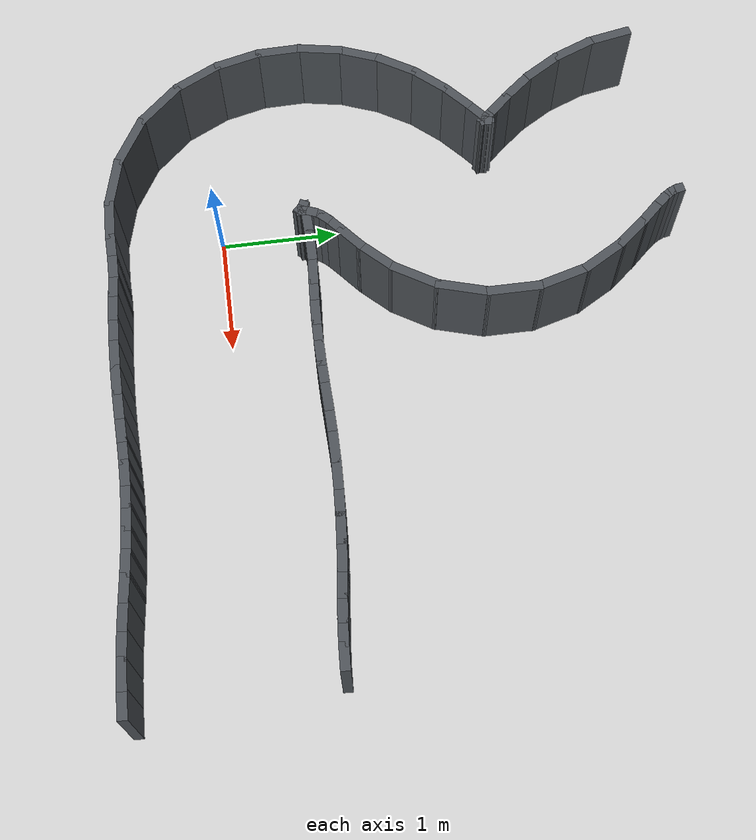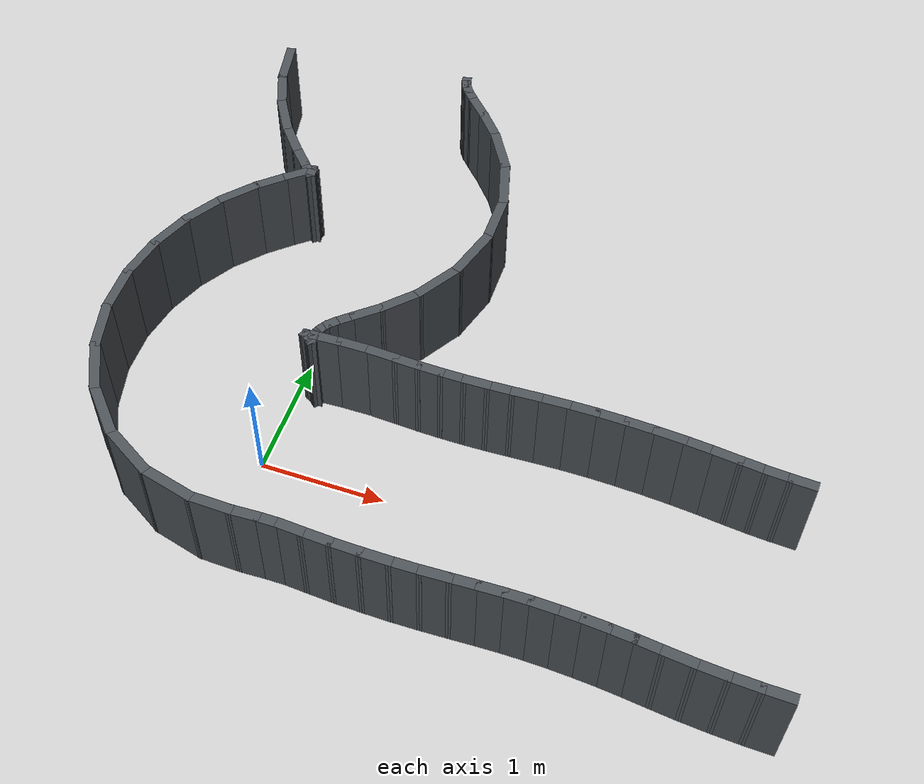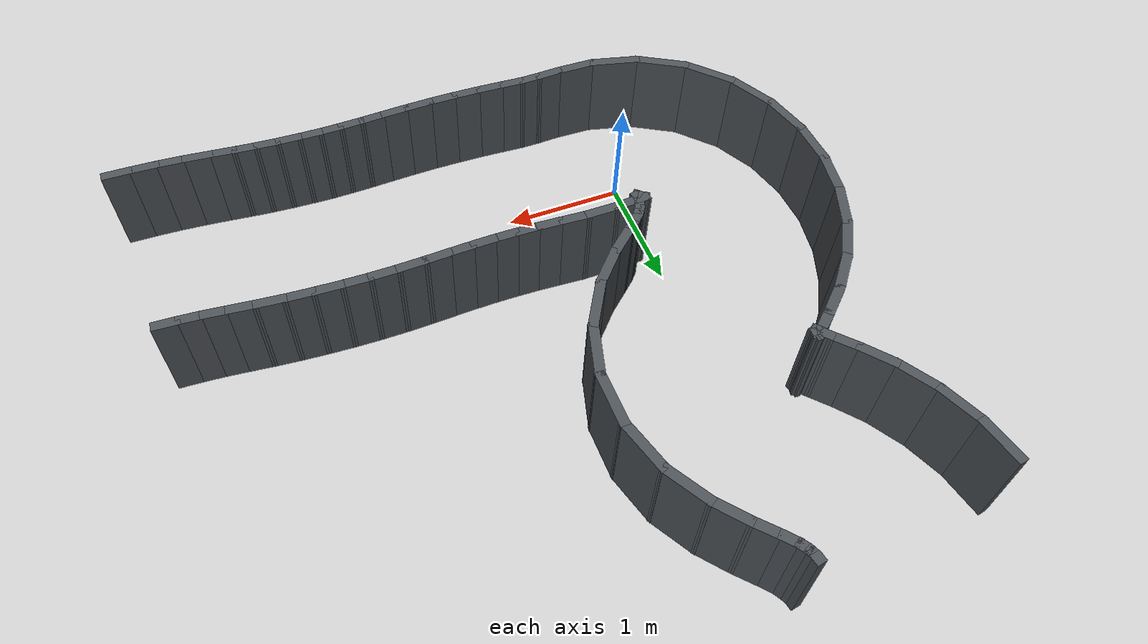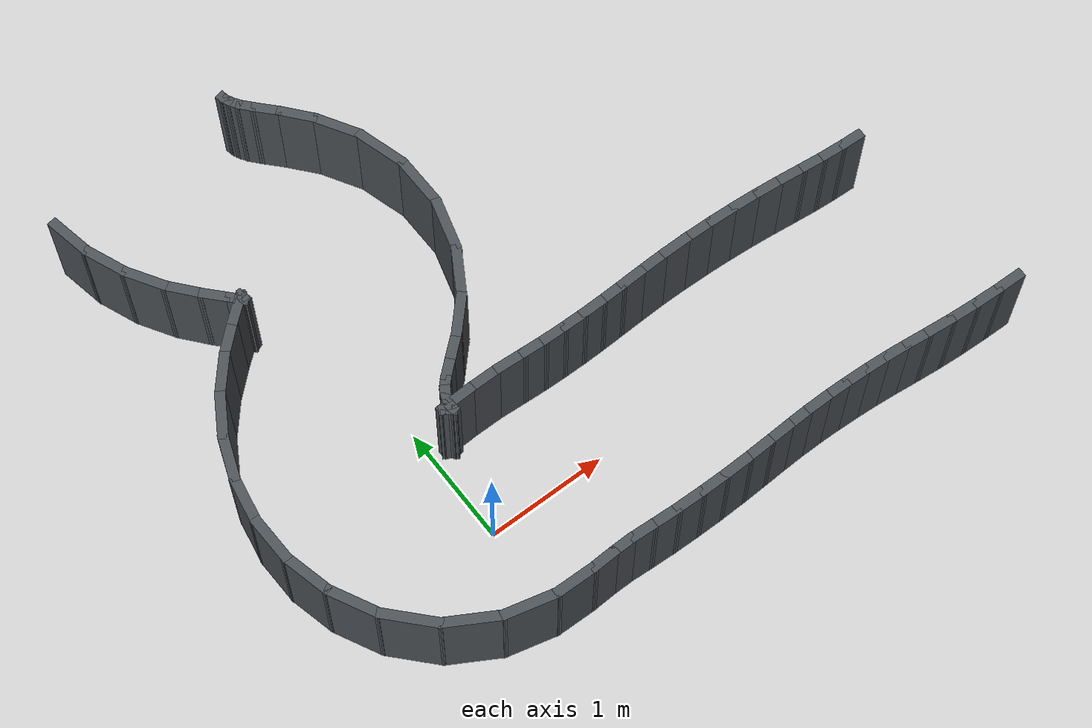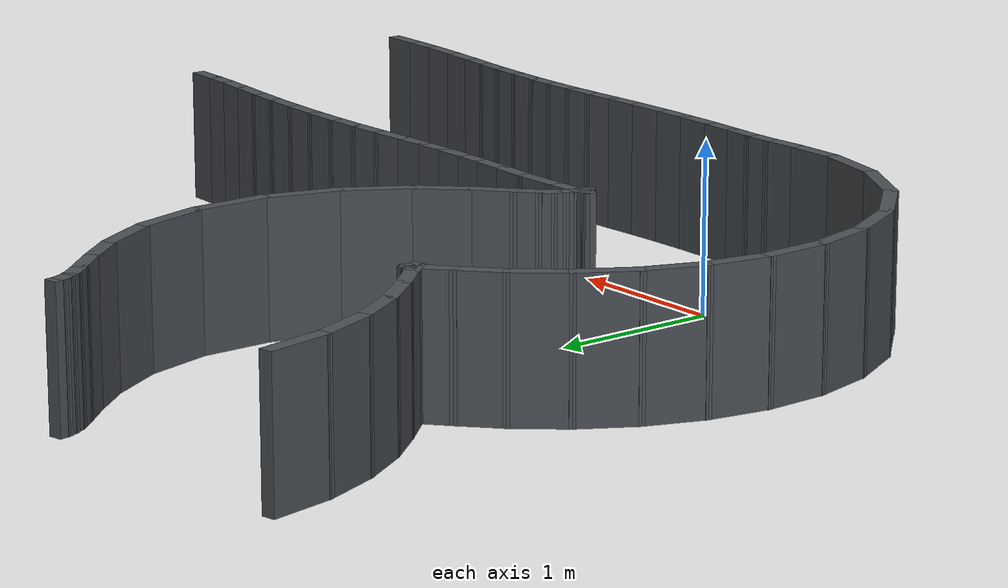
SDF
<sdf version="1.10">
 <world name="kookmin_xycar_track">
  <model name="slam_map">
   <static>true</static>
   <link name="route_wall_0068">
    <pose>0.351519 3.890742 0.400000 0 0 -1.384163306</pose>
    <collision name="collision">
     <geometry><box><size>0.082639 0.080000 0.800000</size></box></geometry>
    </collision>
    <visual name="visual">
     <geometry><box><size>0.082639 0.080000 0.800000</size></box></geometry>
     <material>
      <ambient>0.3000 0.3200 0.3400 1.0000</ambient>
      <diffuse>0.3000 0.3200 0.3400 1.0000</diffuse>
     </material>
    </visual>
   </link>
   <link name="route_wall_0069">
    <pose>0.365880 3.845267 0.400000 0 0 -1.169572810</pose>
    <collision name="collision">
     <geometry><box><size>0.093284 0.080000 0.800000</size></box></geometry>
    </collision>
    <visual name="visual">
     <geometry><box><size>0.093284 0.080000 0.800000</size></box></geometry>
     <material>
      <ambient>0.3000 0.3200 0.3400 1.0000</ambient>
      <diffuse>0.3000 0.3200 0.3400 1.0000</diffuse>
     </material>
    </visual>
   </link>
   <link name="route_wall_0070">
    <pose>0.394767 3.790840 0.400000 0 0 -1.017163962</pose>
    <collision name="collision">
     <geometry><box><size>0.110302 0.080000 0.800000</size></box></geometry>
    </collision>
    <visual name="visual">
     <geometry><box><size>0.110302 0.080000 0.800000</size></box></geometry>
     <material>
      <ambient>0.3000 0.3200 0.3400 1.0000</ambient>
      <diffuse>0.3000 0.3200 0.3400 1.0000</diffuse>
     </material>
    </visual>
   </link>
   <link name="route_wall_0071">
    <pose>0.452056 3.716382 0.400000 0 0 -0.854267817</pose>
    <collision name="collision">
     <geometry><box><size>0.158177 0.080000 0.800000</size></box></geometry>
    </collision>
    <visual name="visual">
     <geometry><box><size>0.158177 0.080000 0.800000</size></box></geometry>
     <material>
      <ambient>0.3000 0.3200 0.3400 1.0000</ambient>
      <diffuse>0.3000 0.3200 0.3400 1.0000</diffuse>
     </material>
    </visual>
   </link>
   <link name="route_wall_0072">
    <pose>0.558555 3.598743 0.400000 0 0 -0.823668303</pose>
    <collision name="collision">
     <geometry><box><size>0.239228 0.080000 0.800000</size></box></geometry>
    </collision>
    <visual name="visual">
     <geometry><box><size>0.239228 0.080000 0.800000</size></box></geometry>
     <material>
      <ambient>0.3000 0.3200 0.3400 1.0000</ambient>
      <diffuse>0.3000 0.3200 0.3400 1.0000</diffuse>
     </material>
    </visual>
   </link>
   <link name="route_wall_0073">
    <pose>0.716644 3.416493 0.400000 0 0 -0.879181869</pose>
    <collision name="collision">
     <geometry><box><size>0.323475 0.080000 0.800000</size></box></geometry>
    </collision>
    <visual name="visual">
     <geometry><box><size>0.323475 0.080000 0.800000</size></box></geometry>
     <material>
      <ambient>0.3000 0.3200 0.3400 1.0000</ambient>
      <diffuse>0.3000 0.3200 0.3400 1.0000</diffuse>
     </material>
    </visual>
   </link>
   <link name="route_wall_0074">
    <pose>0.901000 3.146419 0.400000 0 0 -1.042271819</pose>
    <collision name="collision">
     <geometry><box><size>0.412660 0.080000 0.800000</size></box></geometry>
    </collision>
    <visual name="visual">
     <geometry><box><size>0.412660 0.080000 0.800000</size></box></geometry>
     <material>
      <ambient>0.3000 0.3200 0.3400 1.0000</ambient>
      <diffuse>0.3000 0.3200 0.3400 1.0000</diffuse>
     </material>
    </visual>
   </link>
   <link name="route_wall_0075">
    <pose>1.051302 2.784785 0.400000 0 0 -1.297140389</pose>
    <collision name="collision">
     <geometry><box><size>0.456972 0.080000 0.800000</size></box></geometry>
    </collision>
    <visual name="visual">
     <geometry><box><size>0.456972 0.080000 0.800000</size></box></geometry>
     <material>
      <ambient>0.3000 0.3200 0.3400 1.0000</ambient>
      <diffuse>0.3000 0.3200 0.3400 1.0000</diffuse>
     </material>
    </visual>
   </link>
   <link name="route_wall_0076">
    <pose>1.108245 2.371218 0.400000 0 0 -1.567984853</pose>
    <collision name="collision">
     <geometry><box><size>0.465679 0.080000 0.800000</size></box></geometry>
    </collision>
    <visual name="visual">
     <geometry><box><size>0.465679 0.080000 0.800000</size></box></geometry>
     <material>
      <ambient>0.3000 0.3200 0.3400 1.0000</ambient>
      <diffuse>0.3000 0.3200 0.3400 1.0000</diffuse>
     </material>
    </visual>
   </link>
   <link name="route_wall_0077">
    <pose>1.050243 1.954726 0.400000 0 0 -1.850973391</pose>
    <collision name="collision">
     <geometry><box><size>0.463832 0.080000 0.800000</size></box></geometry>
    </collision>
    <visual name="visual">
     <geometry><box><size>0.463832 0.080000 0.800000</size></box></geometry>
     <material>
      <ambient>0.3000 0.3200 0.3400 1.0000</ambient>
      <diffuse>0.3000 0.3200 0.3400 1.0000</diffuse>
     </material>
    </visual>
   </link>
   <link name="route_wall_0078">
    <pose>0.889145 1.580914 0.400000 0 0 -2.112951959</pose>
    <collision name="collision">
     <geometry><box><size>0.437292 0.080000 0.800000</size></box></geometry>
    </collision>
    <visual name="visual">
     <geometry><box><size>0.437292 0.080000 0.800000</size></box></geometry>
     <material>
      <ambient>0.3000 0.3200 0.3400 1.0000</ambient>
      <diffuse>0.3000 0.3200 0.3400 1.0000</diffuse>
     </material>
    </visual>
   </link>
   <link name="route_wall_0079">
    <pose>0.673524 1.291206 0.400000 0 0 -2.328585380</pose>
    <collision name="collision">
     <geometry><box><size>0.369170 0.080000 0.800000</size></box></geometry>
    </collision>
    <visual name="visual">
     <geometry><box><size>0.369170 0.080000 0.800000</size></box></geometry>
     <material>
      <ambient>0.3000 0.3200 0.3400 1.0000</ambient>
      <diffuse>0.3000 0.3200 0.3400 1.0000</diffuse>
     </material>
    </visual>
   </link>
   <link name="route_wall_0080">
    <pose>0.474333 1.097878 0.400000 0 0 -2.432916965</pose>
    <collision name="collision">
     <geometry><box><size>0.266729 0.080000 0.800000</size></box></geometry>
    </collision>
    <visual name="visual">
     <geometry><box><size>0.266729 0.080000 0.800000</size></box></geometry>
     <material>
      <ambient>0.3000 0.3200 0.3400 1.0000</ambient>
      <diffuse>0.3000 0.3200 0.3400 1.0000</diffuse>
     </material>
    </visual>
   </link>
   <link name="route_wall_0081">
    <pose>0.336733 0.978597 0.400000 0 0 -2.418269901</pose>
    <collision name="collision">
     <geometry><box><size>0.177488 0.080000 0.800000</size></box></geometry>
    </collision>
    <visual name="visual">
     <geometry><box><size>0.177488 0.080000 0.800000</size></box></geometry>
     <material>
      <ambient>0.3000 0.3200 0.3400 1.0000</ambient>
      <diffuse>0.3000 0.3200 0.3400 1.0000</diffuse>
     </material>
    </visual>
   </link>
   <link name="route_wall_0082">
    <pose>0.259336 0.904452 0.400000 0 0 -2.305255522</pose>
    <collision name="collision">
     <geometry><box><size>0.117190 0.080000 0.800000</size></box></geometry>
    </collision>
    <visual name="visual">
     <geometry><box><size>0.117190 0.080000 0.800000</size></box></geometry>
     <material>
      <ambient>0.3000 0.3200 0.3400 1.0000</ambient>
      <diffuse>0.3000 0.3200 0.3400 1.0000</diffuse>
     </material>
    </visual>
   </link>
   <link name="route_wall_0083">
    <pose>0.218987 0.851345 0.400000 0 0 -2.105349764</pose>
    <collision name="collision">
     <geometry><box><size>0.096856 0.080000 0.800000</size></box></geometry>
    </collision>
    <visual name="visual">
     <geometry><box><size>0.096856 0.080000 0.800000</size></box></geometry>
     <material>
      <ambient>0.3000 0.3200 0.3400 1.0000</ambient>
      <diffuse>0.3000 0.3200 0.3400 1.0000</diffuse>
     </material>
    </visual>
   </link>
   <link name="route_wall_0084">
    <pose>0.194809 0.802022 0.400000 0 0 -1.942666619</pose>
    <collision name="collision">
     <geometry><box><size>0.093369 0.080000 0.800000</size></box></geometry>
    </collision>
    <visual name="visual">
     <geometry><box><size>0.093369 0.080000 0.800000</size></box></geometry>
     <material>
      <ambient>0.3000 0.3200 0.3400 1.0000</ambient>
      <diffuse>0.3000 0.3200 0.3400 1.0000</diffuse>
     </material>
    </visual>
   </link>
   <link name="route_wall_0085">
    <pose>0.181132 0.757166 0.400000 0 0 -1.767325091</pose>
    <collision name="collision">
     <geometry><box><size>0.080775 0.080000 0.800000</size></box></geometry>
    </collision>
    <visual name="visual">
     <geometry><box><size>0.080775 0.080000 0.800000</size></box></geometry>
     <material>
      <ambient>0.3000 0.3200 0.3400 1.0000</ambient>
      <diffuse>0.3000 0.3200 0.3400 1.0000</diffuse>
     </material>
    </visual>
   </link>
   <link name="route_wall_0086">
    <pose>0.177388 0.722075 0.400000 0 0 -1.555043667</pose>
    <collision name="collision">
     <geometry><box><size>0.070195 0.080000 0.800000</size></box></geometry>
    </collision>
    <visual name="visual">
     <geometry><box><size>0.070195 0.080000 0.800000</size></box></geometry>
     <material>
      <ambient>0.3000 0.3200 0.3400 1.0000</ambient>
      <diffuse>0.3000 0.3200 0.3400 1.0000</diffuse>
     </material>
    </visual>
   </link>
   <link name="route_wall_0087">
    <pose>0.179727 0.696767 0.400000 0 0 -1.367932783</pose>
    <collision name="collision">
     <geometry><box><size>0.060853 0.080000 0.800000</size></box></geometry>
    </collision>
    <visual name="visual">
     <geometry><box><size>0.060853 0.080000 0.800000</size></box></geometry>
     <material>
      <ambient>0.3000 0.3200 0.3400 1.0000</ambient>
      <diffuse>0.3000 0.3200 0.3400 1.0000</diffuse>
     </material>
    </visual>
   </link>
   <link name="route_wall_0088">
    <pose>0.179326 0.688697 0.400000 0 0 2.433419039</pose>
    <collision name="collision">
     <geometry><box><size>0.046587 0.080000 0.800000</size></box></geometry>
    </collision>
    <visual name="visual">
     <geometry><box><size>0.046587 0.080000 0.800000</size></box></geometry>
     <material>
      <ambient>0.3000 0.3200 0.3400 1.0000</ambient>
      <diffuse>0.3000 0.3200 0.3400 1.0000</diffuse>
     </material>
    </visual>
   </link>
   <link name="route_wall_0089">
    <pose>0.162951 0.704650 0.400000 0 0 2.358446135</pose>
    <collision name="collision">
     <geometry><box><size>0.079151 0.080000 0.800000</size></box></geometry>
    </collision>
    <visual name="visual">
     <geometry><box><size>0.079151 0.080000 0.800000</size></box></geometry>
     <material>
      <ambient>0.3000 0.3200 0.3400 1.0000</ambient>
      <diffuse>0.3000 0.3200 0.3400 1.0000</diffuse>
     </material>
    </visual>
   </link>
   <link name="route_wall_0090">
    <pose>0.130745 0.729712 0.400000 0 0 2.591128678</pose>
    <collision name="collision">
     <geometry><box><size>0.083020 0.080000 0.800000</size></box></geometry>
    </collision>
    <visual name="visual">
     <geometry><box><size>0.083020 0.080000 0.800000</size></box></geometry>
     <material>
      <ambient>0.3000 0.3200 0.3400 1.0000</ambient>
      <diffuse>0.3000 0.3200 0.3400 1.0000</diffuse>
     </material>
    </visual>
   </link>
   <link name="route_wall_0091">
    <pose>0.107009 0.743764 0.400000 0 0 2.663507471</pose>
    <collision name="collision">
     <geometry><box><size>0.052172 0.080000 0.800000</size></box></geometry>
    </collision>
    <visual name="visual">
     <geometry><box><size>0.052172 0.080000 0.800000</size></box></geometry>
     <material>
      <ambient>0.3000 0.3200 0.3400 1.0000</ambient>
      <diffuse>0.3000 0.3200 0.3400 1.0000</diffuse>
     </material>
    </visual>
   </link>
   <link name="route_wall_0092">
    <pose>0.144861 0.749027 0.400000 0 0 0.056891563</pose>
    <collision name="collision">
     <geometry><box><size>0.126650 0.080000 0.800000</size></box></geometry>
    </collision>
    <visual name="visual">
     <geometry><box><size>0.126650 0.080000 0.800000</size></box></geometry>
     <material>
      <ambient>0.3000 0.3200 0.3400 1.0000</ambient>
      <diffuse>0.3000 0.3200 0.3400 1.0000</diffuse>
     </material>
    </visual>
   </link>
   <link name="route_wall_0093">
    <pose>0.285789 0.755765 0.400000 0 0 0.043729290</pose>
    <collision name="collision">
     <geometry><box><size>0.235534 0.080000 0.800000</size></box></geometry>
    </collision>
    <visual name="visual">
     <geometry><box><size>0.235534 0.080000 0.800000</size></box></geometry>
     <material>
      <ambient>0.3000 0.3200 0.3400 1.0000</ambient>
      <diffuse>0.3000 0.3200 0.3400 1.0000</diffuse>
     </material>
    </visual>
   </link>
   <link name="route_wall_0094">
    <pose>0.503517 0.760731 0.400000 0 0 0.005771295</pose>
    <collision name="collision">
     <geometry><box><size>0.280112 0.080000 0.800000</size></box></geometry>
    </collision>
    <visual name="visual">
     <geometry><box><size>0.280112 0.080000 0.800000</size></box></geometry>
     <material>
      <ambient>0.3000 0.3200 0.3400 1.0000</ambient>
      <diffuse>0.3000 0.3200 0.3400 1.0000</diffuse>
     </material>
    </visual>
   </link>
   <link name="route_wall_0095">
    <pose>0.735142 0.755371 0.400000 0 0 -0.054200212</pose>
    <collision name="collision">
     <geometry><box><size>0.263471 0.080000 0.800000</size></box></geometry>
    </collision>
    <visual name="visual">
     <geometry><box><size>0.263471 0.080000 0.800000</size></box></geometry>
     <material>
      <ambient>0.3000 0.3200 0.3400 1.0000</ambient>
      <diffuse>0.3000 0.3200 0.3400 1.0000</diffuse>
     </material>
    </visual>
   </link>
   <link name="route_wall_0096">
    <pose>0.939828 0.744483 0.400000 0 0 -0.051876779</pose>
    <collision name="collision">
     <geometry><box><size>0.226480 0.080000 0.800000</size></box></geometry>
    </collision>
    <visual name="visual">
     <geometry><box><size>0.226480 0.080000 0.800000</size></box></geometry>
     <material>
      <ambient>0.3000 0.3200 0.3400 1.0000</ambient>
      <diffuse>0.3000 0.3200 0.3400 1.0000</diffuse>
     </material>
    </visual>
   </link>
   <link name="route_wall_0097">
    <pose>1.123039 0.737535 0.400000 0 0 -0.023457071</pose>
    <collision name="collision">
     <geometry><box><size>0.220243 0.080000 0.800000</size></box></geometry>
    </collision>
    <visual name="visual">
     <geometry><box><size>0.220243 0.080000 0.800000</size></box></geometry>
     <material>
      <ambient>0.3000 0.3200 0.3400 1.0000</ambient>
      <diffuse>0.3000 0.3200 0.3400 1.0000</diffuse>
     </material>
    </visual>
   </link>
   <link name="route_wall_0098">
    <pose>1.303854 0.735059 0.400000 0 0 -0.003988788</pose>
    <collision name="collision">
     <geometry><box><size>0.221437 0.080000 0.800000</size></box></geometry>
    </collision>
    <visual name="visual">
     <geometry><box><size>0.221437 0.080000 0.800000</size></box></geometry>
     <material>
      <ambient>0.3000 0.3200 0.3400 1.0000</ambient>
      <diffuse>0.3000 0.3200 0.3400 1.0000</diffuse>
     </material>
    </visual>
   </link>
   <link name="route_wall_0099">
    <pose>1.485611 0.736625 0.400000 0 0 0.021173588</pose>
    <collision name="collision">
     <geometry><box><size>0.222119 0.080000 0.800000</size></box></geometry>
    </collision>
    <visual name="visual">
     <geometry><box><size>0.222119 0.080000 0.800000</size></box></geometry>
     <material>
      <ambient>0.3000 0.3200 0.3400 1.0000</ambient>
      <diffuse>0.3000 0.3200 0.3400 1.0000</diffuse>
     </material>
    </visual>
   </link>
   <link name="route_wall_0100">
    <pose>1.671480 0.742282 0.400000 0 0 0.039303703</pose>
    <collision name="collision">
     <geometry><box><size>0.229805 0.080000 0.800000</size></box></geometry>
    </collision>
    <visual name="visual">
     <geometry><box><size>0.229805 0.080000 0.800000</size></box></geometry>
     <material>
      <ambient>0.3000 0.3200 0.3400 1.0000</ambient>
      <diffuse>0.3000 0.3200 0.3400 1.0000</diffuse>
     </material>
    </visual>
   </link>
   <link name="route_wall_0101">
    <pose>1.867496 0.750580 0.400000 0 0 0.045124178</pose>
    <collision name="collision">
     <geometry><box><size>0.242582 0.080000 0.800000</size></box></geometry>
    </collision>
    <visual name="visual">
     <geometry><box><size>0.242582 0.080000 0.800000</size></box></geometry>
     <material>
      <ambient>0.3000 0.3200 0.3400 1.0000</ambient>
      <diffuse>0.3000 0.3200 0.3400 1.0000</diffuse>
     </material>
    </visual>
   </link>
   <link name="route_wall_0102">
    <pose>2.076280 0.758571 0.400000 0 0 0.031792913</pose>
    <collision name="collision">
     <geometry><box><size>0.255301 0.080000 0.800000</size></box></geometry>
    </collision>
    <visual name="visual">
     <geometry><box><size>0.255301 0.080000 0.800000</size></box></geometry>
     <material>
      <ambient>0.3000 0.3200 0.3400 1.0000</ambient>
      <diffuse>0.3000 0.3200 0.3400 1.0000</diffuse>
     </material>
    </visual>
   </link>
   <link name="route_wall_0103">
    <pose>2.294770 0.762746 0.400000 0 0 0.006785297</pose>
    <collision name="collision">
     <geometry><box><size>0.261793 0.080000 0.800000</size></box></geometry>
    </collision>
    <visual name="visual">
     <geometry><box><size>0.261793 0.080000 0.800000</size></box></geometry>
     <material>
      <ambient>0.3000 0.3200 0.3400 1.0000</ambient>
      <diffuse>0.3000 0.3200 0.3400 1.0000</diffuse>
     </material>
    </visual>
   </link>
   <link name="route_wall_0104">
    <pose>2.515709 0.761073 0.400000 0 0 -0.022035372</pose>
    <collision name="collision">
     <geometry><box><size>0.260145 0.080000 0.800000</size></box></geometry>
    </collision>
    <visual name="visual">
     <geometry><box><size>0.260145 0.080000 0.800000</size></box></geometry>
     <material>
      <ambient>0.3000 0.3200 0.3400 1.0000</ambient>
      <diffuse>0.3000 0.3200 0.3400 1.0000</diffuse>
     </material>
    </visual>
   </link>
   <link name="route_wall_0105">
    <pose>2.734139 0.753950 0.400000 0 0 -0.043316090</pose>
    <collision name="collision">
     <geometry><box><size>0.256972 0.080000 0.800000</size></box></geometry>
    </collision>
    <visual name="visual">
     <geometry><box><size>0.256972 0.080000 0.800000</size></box></geometry>
     <material>
      <ambient>0.3000 0.3200 0.3400 1.0000</ambient>
      <diffuse>0.3000 0.3200 0.3400 1.0000</diffuse>
     </material>
    </visual>
   </link>
   <link name="route_wall_0106">
    <pose>2.951722 0.742174 0.400000 0 0 -0.064725048</pose>
    <collision name="collision">
     <geometry><box><size>0.258856 0.080000 0.800000</size></box></geometry>
    </collision>
    <visual name="visual">
     <geometry><box><size>0.258856 0.080000 0.800000</size></box></geometry>
     <material>
      <ambient>0.3000 0.3200 0.3400 1.0000</ambient>
      <diffuse>0.3000 0.3200 0.3400 1.0000</diffuse>
     </material>
    </visual>
   </link>
   <link name="route_wall_0107">
    <pose>3.169050 0.725320 0.400000 0 0 -0.090170386</pose>
    <collision name="collision">
     <geometry><box><size>0.257140 0.080000 0.800000</size></box></geometry>
    </collision>
    <visual name="visual">
     <geometry><box><size>0.257140 0.080000 0.800000</size></box></geometry>
     <material>
      <ambient>0.3000 0.3200 0.3400 1.0000</ambient>
      <diffuse>0.3000 0.3200 0.3400 1.0000</diffuse>
     </material>
    </visual>
   </link>
   <link name="route_wall_0108">
    <pose>3.378248 0.704652 0.400000 0 0 -0.107344202</pose>
    <collision name="collision">
     <geometry><box><size>0.243309 0.080000 0.800000</size></box></geometry>
    </collision>
    <visual name="visual">
     <geometry><box><size>0.243309 0.080000 0.800000</size></box></geometry>
     <material>
      <ambient>0.3000 0.3200 0.3400 1.0000</ambient>
      <diffuse>0.3000 0.3200 0.3400 1.0000</diffuse>
     </material>
    </visual>
   </link>
   <link name="route_wall_0109">
    <pose>3.571440 0.684551 0.400000 0 0 -0.099643258</pose>
    <collision name="collision">
     <geometry><box><size>0.225163 0.080000 0.800000</size></box></geometry>
    </collision>
    <visual name="visual">
     <geometry><box><size>0.225163 0.080000 0.800000</size></box></geometry>
     <material>
      <ambient>0.3000 0.3200 0.3400 1.0000</ambient>
      <diffuse>0.3000 0.3200 0.3400 1.0000</diffuse>
     </material>
    </visual>
   </link>
   <link name="route_wall_0110">
    <pose>3.751770 0.668984 0.400000 0 0 -0.071946167</pose>
    <collision name="collision">
     <geometry><box><size>0.216874 0.080000 0.800000</size></box></geometry>
    </collision>
    <visual name="visual">
     <geometry><box><size>0.216874 0.080000 0.800000</size></box></geometry>
     <material>
      <ambient>0.3000 0.3200 0.3400 1.0000</ambient>
      <diffuse>0.3000 0.3200 0.3400 1.0000</diffuse>
     </material>
    </visual>
   </link>
   <link name="route_wall_0111">
    <pose>3.929321 0.658762 0.400000 0 0 -0.043240361</pose>
    <collision name="collision">
     <geometry><box><size>0.218855 0.080000 0.800000</size></box></geometry>
    </collision>
    <visual name="visual">
     <geometry><box><size>0.218855 0.080000 0.800000</size></box></geometry>
     <material>
      <ambient>0.3000 0.3200 0.3400 1.0000</ambient>
      <diffuse>0.3000 0.3200 0.3400 1.0000</diffuse>
     </material>
    </visual>
   </link>
   <link name="route_wall_0282">
    <pose>-1.243937 3.585117 0.400000 0 0 -1.381845195</pose>
    <collision name="collision">
     <geometry><box><size>0.395915 0.080000 0.800000</size></box></geometry>
    </collision>
    <visual name="visual">
     <geometry><box><size>0.395915 0.080000 0.800000</size></box></geometry>
     <material>
      <ambient>0.3000 0.3200 0.3400 1.0000</ambient>
      <diffuse>0.3000 0.3200 0.3400 1.0000</diffuse>
     </material>
    </visual>
   </link>
   <link name="route_wall_0283">
    <pose>-1.146587 3.249851 0.400000 0 0 -1.191718948</pose>
    <collision name="collision">
     <geometry><box><size>0.385479 0.080000 0.800000</size></box></geometry>
    </collision>
    <visual name="visual">
     <geometry><box><size>0.385479 0.080000 0.800000</size></box></geometry>
     <material>
      <ambient>0.3000 0.3200 0.3400 1.0000</ambient>
      <diffuse>0.3000 0.3200 0.3400 1.0000</diffuse>
     </material>
    </visual>
   </link>
   <link name="route_wall_0284">
    <pose>-0.997370 2.948992 0.400000 0 0 -1.024829189</pose>
    <collision name="collision">
     <geometry><box><size>0.368523 0.080000 0.800000</size></box></geometry>
    </collision>
    <visual name="visual">
     <geometry><box><size>0.368523 0.080000 0.800000</size></box></geometry>
     <material>
      <ambient>0.3000 0.3200 0.3400 1.0000</ambient>
      <diffuse>0.3000 0.3200 0.3400 1.0000</diffuse>
     </material>
    </visual>
   </link>
   <link name="route_wall_0285">
    <pose>-0.822503 2.700365 0.400000 0 0 -0.879493915</pose>
    <collision name="collision">
     <geometry><box><size>0.321004 0.080000 0.800000</size></box></geometry>
    </collision>
    <visual name="visual">
     <geometry><box><size>0.321004 0.080000 0.800000</size></box></geometry>
     <material>
      <ambient>0.3000 0.3200 0.3400 1.0000</ambient>
      <diffuse>0.3000 0.3200 0.3400 1.0000</diffuse>
     </material>
    </visual>
   </link>
   <link name="route_wall_0286">
    <pose>-0.664948 2.518713 0.400000 0 0 -0.823772172</pose>
    <collision name="collision">
     <geometry><box><size>0.240097 0.080000 0.800000</size></box></geometry>
    </collision>
    <visual name="visual">
     <geometry><box><size>0.240097 0.080000 0.800000</size></box></geometry>
     <material>
      <ambient>0.3000 0.3200 0.3400 1.0000</ambient>
      <diffuse>0.3000 0.3200 0.3400 1.0000</diffuse>
     </material>
    </visual>
   </link>
   <link name="route_wall_0287">
    <pose>-0.558795 2.401780 0.400000 0 0 -0.850819338</pose>
    <collision name="collision">
     <geometry><box><size>0.155791 0.080000 0.800000</size></box></geometry>
    </collision>
    <visual name="visual">
     <geometry><box><size>0.155791 0.080000 0.800000</size></box></geometry>
     <material>
      <ambient>0.3000 0.3200 0.3400 1.0000</ambient>
      <diffuse>0.3000 0.3200 0.3400 1.0000</diffuse>
     </material>
    </visual>
   </link>
   <link name="route_wall_0288">
    <pose>-0.512037 2.348547 0.400000 0 0 -0.846677695</pose>
    <collision name="collision">
     <geometry><box><size>0.065914 0.080000 0.800000</size></box></geometry>
    </collision>
    <visual name="visual">
     <geometry><box><size>0.065914 0.080000 0.800000</size></box></geometry>
     <material>
      <ambient>0.3000 0.3200 0.3400 1.0000</ambient>
      <diffuse>0.3000 0.3200 0.3400 1.0000</diffuse>
     </material>
    </visual>
   </link>
   <link name="route_wall_0289">
    <pose>-0.505952 2.347813 0.400000 0 0 1.842412291</pose>
    <collision name="collision">
     <geometry><box><size>0.058628 0.080000 0.800000</size></box></geometry>
    </collision>
    <visual name="visual">
     <geometry><box><size>0.058628 0.080000 0.800000</size></box></geometry>
     <material>
      <ambient>0.3000 0.3200 0.3400 1.0000</ambient>
      <diffuse>0.3000 0.3200 0.3400 1.0000</diffuse>
     </material>
    </visual>
   </link>
   <link name="route_wall_0290">
    <pose>-0.507939 2.370600 0.400000 0 0 1.533772612</pose>
    <collision name="collision">
     <geometry><box><size>0.067648 0.080000 0.800000</size></box></geometry>
    </collision>
    <visual name="visual">
     <geometry><box><size>0.067648 0.080000 0.800000</size></box></geometry>
     <material>
      <ambient>0.3000 0.3200 0.3400 1.0000</ambient>
      <diffuse>0.3000 0.3200 0.3400 1.0000</diffuse>
     </material>
    </visual>
   </link>
   <link name="route_wall_0291">
    <pose>-0.504480 2.397080 0.400000 0 0 1.342172992</pose>
    <collision name="collision">
     <geometry><box><size>0.066009 0.080000 0.800000</size></box></geometry>
    </collision>
    <visual name="visual">
     <geometry><box><size>0.066009 0.080000 0.800000</size></box></geometry>
     <material>
      <ambient>0.3000 0.3200 0.3400 1.0000</ambient>
      <diffuse>0.3000 0.3200 0.3400 1.0000</diffuse>
     </material>
    </visual>
   </link>
   <link name="route_wall_0292">
    <pose>-0.502677 2.409779 0.400000 0 0 3.113102607</pose>
    <collision name="collision">
     <geometry><box><size>0.042289 0.080000 0.800000</size></box></geometry>
    </collision>
    <visual name="visual">
     <geometry><box><size>0.042289 0.080000 0.800000</size></box></geometry>
     <material>
      <ambient>0.3000 0.3200 0.3400 1.0000</ambient>
      <diffuse>0.3000 0.3200 0.3400 1.0000</diffuse>
     </material>
    </visual>
   </link>
   <link name="route_wall_0293">
    <pose>-0.529507 2.386317 0.400000 0 0 -2.400720862</pose>
    <collision name="collision">
     <geometry><box><size>0.109620 0.080000 0.800000</size></box></geometry>
    </collision>
    <visual name="visual">
     <geometry><box><size>0.109620 0.080000 0.800000</size></box></geometry>
     <material>
      <ambient>0.3000 0.3200 0.3400 1.0000</ambient>
      <diffuse>0.3000 0.3200 0.3400 1.0000</diffuse>
     </material>
    </visual>
   </link>
   <link name="route_wall_0294">
    <pose>-0.621198 2.307217 0.400000 0 0 -2.441505947</pose>
    <collision name="collision">
     <geometry><box><size>0.212612 0.080000 0.800000</size></box></geometry>
    </collision>
    <visual name="visual">
     <geometry><box><size>0.212612 0.080000 0.800000</size></box></geometry>
     <material>
      <ambient>0.3000 0.3200 0.3400 1.0000</ambient>
      <diffuse>0.3000 0.3200 0.3400 1.0000</diffuse>
     </material>
    </visual>
   </link>
   <link name="route_wall_0295">
    <pose>-0.783895 2.163398 0.400000 0 0 -2.402007681</pose>
    <collision name="collision">
     <geometry><box><size>0.301770 0.080000 0.800000</size></box></geometry>
    </collision>
    <visual name="visual">
     <geometry><box><size>0.301770 0.080000 0.800000</size></box></geometry>
     <material>
      <ambient>0.3000 0.3200 0.3400 1.0000</ambient>
      <diffuse>0.3000 0.3200 0.3400 1.0000</diffuse>
     </material>
    </visual>
   </link>
   <link name="route_wall_0296">
    <pose>-0.985259 1.952997 0.400000 0 0 -2.279145959</pose>
    <collision name="collision">
     <geometry><box><size>0.361782 0.080000 0.800000</size></box></geometry>
    </collision>
    <visual name="visual">
     <geometry><box><size>0.361782 0.080000 0.800000</size></box></geometry>
     <material>
      <ambient>0.3000 0.3200 0.3400 1.0000</ambient>
      <diffuse>0.3000 0.3200 0.3400 1.0000</diffuse>
     </material>
    </visual>
   </link>
   <link name="route_wall_0297">
    <pose>-1.177415 1.683910 0.400000 0 0 -2.107920237</pose>
    <collision name="collision">
     <geometry><box><size>0.381955 0.080000 0.800000</size></box></geometry>
    </collision>
    <visual name="visual">
     <geometry><box><size>0.381955 0.080000 0.800000</size></box></geometry>
     <material>
      <ambient>0.3000 0.3200 0.3400 1.0000</ambient>
      <diffuse>0.3000 0.3200 0.3400 1.0000</diffuse>
     </material>
    </visual>
   </link>
   <link name="route_wall_0298">
    <pose>-1.326118 1.375503 0.400000 0 0 -1.933116707</pose>
    <collision name="collision">
     <geometry><box><size>0.385439 0.080000 0.800000</size></box></geometry>
    </collision>
    <visual name="visual">
     <geometry><box><size>0.385439 0.080000 0.800000</size></box></geometry>
     <material>
      <ambient>0.3000 0.3200 0.3400 1.0000</ambient>
      <diffuse>0.3000 0.3200 0.3400 1.0000</diffuse>
     </material>
    </visual>
   </link>
   <link name="route_wall_0299">
    <pose>-1.418718 1.037797 0.400000 0 0 -1.747047136</pose>
    <collision name="collision">
     <geometry><box><size>0.397944 0.080000 0.800000</size></box></geometry>
    </collision>
    <visual name="visual">
     <geometry><box><size>0.397944 0.080000 0.800000</size></box></geometry>
     <material>
      <ambient>0.3000 0.3200 0.3400 1.0000</ambient>
      <diffuse>0.3000 0.3200 0.3400 1.0000</diffuse>
     </material>
    </visual>
   </link>
   <link name="route_wall_0300">
    <pose>-1.445212 0.677450 0.400000 0 0 -1.544263282</pose>
    <collision name="collision">
     <geometry><box><size>0.408425 0.080000 0.800000</size></box></geometry>
    </collision>
    <visual name="visual">
     <geometry><box><size>0.408425 0.080000 0.800000</size></box></geometry>
     <material>
      <ambient>0.3000 0.3200 0.3400 1.0000</ambient>
      <diffuse>0.3000 0.3200 0.3400 1.0000</diffuse>
     </material>
    </visual>
   </link>
   <link name="route_wall_0301">
    <pose>-1.395651 0.309780 0.400000 0 0 -1.332016456</pose>
    <collision name="collision">
     <geometry><box><size>0.417763 0.080000 0.800000</size></box></geometry>
    </collision>
    <visual name="visual">
     <geometry><box><size>0.417763 0.080000 0.800000</size></box></geometry>
     <material>
      <ambient>0.3000 0.3200 0.3400 1.0000</ambient>
      <diffuse>0.3000 0.3200 0.3400 1.0000</diffuse>
     </material>
    </visual>
   </link>
   <link name="route_wall_0302">
    <pose>-1.259336 -0.053970 0.400000 0 0 -1.100390821</pose>
    <collision name="collision">
     <geometry><box><size>0.444376 0.080000 0.800000</size></box></geometry>
    </collision>
    <visual name="visual">
     <geometry><box><size>0.444376 0.080000 0.800000</size></box></geometry>
     <material>
      <ambient>0.3000 0.3200 0.3400 1.0000</ambient>
      <diffuse>0.3000 0.3200 0.3400 1.0000</diffuse>
     </material>
    </visual>
   </link>
   <link name="route_wall_0303">
    <pose>-1.019522 -0.394687 0.400000 0 0 -0.825280980</pose>
    <collision name="collision">
     <geometry><box><size>0.476862 0.080000 0.800000</size></box></geometry>
    </collision>
    <visual name="visual">
     <geometry><box><size>0.476862 0.080000 0.800000</size></box></geometry>
     <material>
      <ambient>0.3000 0.3200 0.3400 1.0000</ambient>
      <diffuse>0.3000 0.3200 0.3400 1.0000</diffuse>
     </material>
    </visual>
   </link>
   <link name="route_wall_0304">
    <pose>-0.680545 -0.665532 0.400000 0 0 -0.524361371</pose>
    <collision name="collision">
     <geometry><box><size>0.480837 0.080000 0.800000</size></box></geometry>
    </collision>
    <visual name="visual">
     <geometry><box><size>0.480837 0.080000 0.800000</size></box></geometry>
     <material>
      <ambient>0.3000 0.3200 0.3400 1.0000</ambient>
      <diffuse>0.3000 0.3200 0.3400 1.0000</diffuse>
     </material>
    </visual>
   </link>
   <link name="route_wall_0305">
    <pose>-0.290702 -0.824919 0.400000 0 0 -0.241537578</pose>
    <collision name="collision">
     <geometry><box><size>0.449981 0.080000 0.800000</size></box></geometry>
    </collision>
    <visual name="visual">
     <geometry><box><size>0.449981 0.080000 0.800000</size></box></geometry>
     <material>
      <ambient>0.3000 0.3200 0.3400 1.0000</ambient>
      <diffuse>0.3000 0.3200 0.3400 1.0000</diffuse>
     </material>
    </visual>
   </link>
   <link name="route_wall_0306">
    <pose>0.064565 -0.877067 0.400000 0 0 -0.019936206</pose>
    <collision name="collision">
     <geometry><box><size>0.352515 0.080000 0.800000</size></box></geometry>
    </collision>
    <visual name="visual">
     <geometry><box><size>0.352515 0.080000 0.800000</size></box></geometry>
     <material>
      <ambient>0.3000 0.3200 0.3400 1.0000</ambient>
      <diffuse>0.3000 0.3200 0.3400 1.0000</diffuse>
     </material>
    </visual>
   </link>
   <link name="route_wall_0307">
    <pose>0.322601 -0.875815 0.400000 0 0 0.042869942</pose>
    <collision name="collision">
     <geometry><box><size>0.243805 0.080000 0.800000</size></box></geometry>
    </collision>
    <visual name="visual">
     <geometry><box><size>0.243805 0.080000 0.800000</size></box></geometry>
     <material>
      <ambient>0.3000 0.3200 0.3400 1.0000</ambient>
      <diffuse>0.3000 0.3200 0.3400 1.0000</diffuse>
     </material>
    </visual>
   </link>
   <link name="route_wall_0308">
    <pose>0.503953 -0.870766 0.400000 0 0 0.008574528</pose>
    <collision name="collision">
     <geometry><box><size>0.199092 0.080000 0.800000</size></box></geometry>
    </collision>
    <visual name="visual">
     <geometry><box><size>0.199092 0.080000 0.800000</size></box></geometry>
     <material>
      <ambient>0.3000 0.3200 0.3400 1.0000</ambient>
      <diffuse>0.3000 0.3200 0.3400 1.0000</diffuse>
     </material>
    </visual>
   </link>
   <link name="route_wall_0309">
    <pose>0.671282 -0.875205 0.400000 0 0 -0.058275490</pose>
    <collision name="collision">
     <geometry><box><size>0.215871 0.080000 0.800000</size></box></geometry>
    </collision>
    <visual name="visual">
     <geometry><box><size>0.215871 0.080000 0.800000</size></box></geometry>
     <material>
      <ambient>0.3000 0.3200 0.3400 1.0000</ambient>
      <diffuse>0.3000 0.3200 0.3400 1.0000</diffuse>
     </material>
    </visual>
   </link>
   <link name="route_wall_0310">
    <pose>0.865356 -0.885763 0.400000 0 0 -0.051105161</pose>
    <collision name="collision">
     <geometry><box><size>0.252854 0.080000 0.800000</size></box></geometry>
    </collision>
    <visual name="visual">
     <geometry><box><size>0.252854 0.080000 0.800000</size></box></geometry>
     <material>
      <ambient>0.3000 0.3200 0.3400 1.0000</ambient>
      <diffuse>0.3000 0.3200 0.3400 1.0000</diffuse>
     </material>
    </visual>
   </link>
   <link name="route_wall_0311">
    <pose>1.081157 -0.893812 0.400000 0 0 -0.023849039</pose>
    <collision name="collision">
     <geometry><box><size>0.259087 0.080000 0.800000</size></box></geometry>
    </collision>
    <visual name="visual">
     <geometry><box><size>0.259087 0.080000 0.800000</size></box></geometry>
     <material>
      <ambient>0.3000 0.3200 0.3400 1.0000</ambient>
      <diffuse>0.3000 0.3200 0.3400 1.0000</diffuse>
     </material>
    </visual>
   </link>
   <link name="route_wall_0312">
    <pose>1.299618 -0.896834 0.400000 0 0 -0.003755734</pose>
    <collision name="collision">
     <geometry><box><size>0.257898 0.080000 0.800000</size></box></geometry>
    </collision>
    <visual name="visual">
     <geometry><box><size>0.257898 0.080000 0.800000</size></box></geometry>
     <material>
      <ambient>0.3000 0.3200 0.3400 1.0000</ambient>
      <diffuse>0.3000 0.3200 0.3400 1.0000</diffuse>
     </material>
    </visual>
   </link>
   <link name="route_wall_0313">
    <pose>1.517149 -0.894976 0.400000 0 0 0.020875233</pose>
    <collision name="collision">
     <geometry><box><size>0.257214 0.080000 0.800000</size></box></geometry>
    </collision>
    <visual name="visual">
     <geometry><box><size>0.257214 0.080000 0.800000</size></box></geometry>
     <material>
      <ambient>0.3000 0.3200 0.3400 1.0000</ambient>
      <diffuse>0.3000 0.3200 0.3400 1.0000</diffuse>
     </material>
    </visual>
   </link>
   <link name="route_wall_0314">
    <pose>1.730421 -0.888623 0.400000 0 0 0.039004316</pose>
    <collision name="collision">
     <geometry><box><size>0.249537 0.080000 0.800000</size></box></geometry>
    </collision>
    <visual name="visual">
     <geometry><box><size>0.249537 0.080000 0.800000</size></box></geometry>
     <material>
      <ambient>0.3000 0.3200 0.3400 1.0000</ambient>
      <diffuse>0.3000 0.3200 0.3400 1.0000</diffuse>
     </material>
    </visual>
   </link>
   <link name="route_wall_0315">
    <pose>1.933388 -0.880087 0.400000 0 0 0.045264431</pose>
    <collision name="collision">
     <geometry><box><size>0.236758 0.080000 0.800000</size></box></geometry>
    </collision>
    <visual name="visual">
     <geometry><box><size>0.236758 0.080000 0.800000</size></box></geometry>
     <material>
      <ambient>0.3000 0.3200 0.3400 1.0000</ambient>
      <diffuse>0.3000 0.3200 0.3400 1.0000</diffuse>
     </material>
    </visual>
   </link>
   <link name="route_wall_0316">
    <pose>2.123639 -0.872667 0.400000 0 0 0.032263150</pose>
    <collision name="collision">
     <geometry><box><size>0.224042 0.080000 0.800000</size></box></geometry>
    </collision>
    <visual name="visual">
     <geometry><box><size>0.224042 0.080000 0.800000</size></box></geometry>
     <material>
      <ambient>0.3000 0.3200 0.3400 1.0000</ambient>
      <diffuse>0.3000 0.3200 0.3400 1.0000</diffuse>
     </material>
    </visual>
   </link>
   <link name="route_wall_0317">
    <pose>2.304381 -0.869076 0.400000 0 0 0.007008610</pose>
    <collision name="collision">
     <geometry><box><size>0.217541 0.080000 0.800000</size></box></geometry>
    </collision>
    <visual name="visual">
     <geometry><box><size>0.217541 0.080000 0.800000</size></box></geometry>
     <material>
      <ambient>0.3000 0.3200 0.3400 1.0000</ambient>
      <diffuse>0.3000 0.3200 0.3400 1.0000</diffuse>
     </material>
    </visual>
   </link>
   <link name="route_wall_0318">
    <pose>2.482719 -0.870465 0.400000 0 0 -0.022450870</pose>
    <collision name="collision">
     <geometry><box><size>0.219185 0.080000 0.800000</size></box></geometry>
    </collision>
    <visual name="visual">
     <geometry><box><size>0.219185 0.080000 0.800000</size></box></geometry>
     <material>
      <ambient>0.3000 0.3200 0.3400 1.0000</ambient>
      <diffuse>0.3000 0.3200 0.3400 1.0000</diffuse>
     </material>
    </visual>
   </link>
   <link name="route_wall_0319">
    <pose>2.663388 -0.876424 0.400000 0 0 -0.043306161</pose>
    <collision name="collision">
     <geometry><box><size>0.222369 0.080000 0.800000</size></box></geometry>
    </collision>
    <visual name="visual">
     <geometry><box><size>0.222369 0.080000 0.800000</size></box></geometry>
     <material>
      <ambient>0.3000 0.3200 0.3400 1.0000</ambient>
      <diffuse>0.3000 0.3200 0.3400 1.0000</diffuse>
     </material>
    </visual>
   </link>
   <link name="route_wall_0320">
    <pose>2.844538 -0.886189 0.400000 0 0 -0.064511774</pose>
    <collision name="collision">
     <geometry><box><size>0.220479 0.080000 0.800000</size></box></geometry>
    </collision>
    <visual name="visual">
     <geometry><box><size>0.220479 0.080000 0.800000</size></box></geometry>
     <material>
      <ambient>0.3000 0.3200 0.3400 1.0000</ambient>
      <diffuse>0.3000 0.3200 0.3400 1.0000</diffuse>
     </material>
    </visual>
   </link>
   <link name="route_wall_0321">
    <pose>3.025313 -0.900244 0.400000 0 0 -0.090549635</pose>
    <collision name="collision">
     <geometry><box><size>0.222193 0.080000 0.800000</size></box></geometry>
    </collision>
    <visual name="visual">
     <geometry><box><size>0.222193 0.080000 0.800000</size></box></geometry>
     <material>
      <ambient>0.3000 0.3200 0.3400 1.0000</ambient>
      <diffuse>0.3000 0.3200 0.3400 1.0000</diffuse>
     </material>
    </visual>
   </link>
   <link name="route_wall_0322">
    <pose>3.213483 -0.919005 0.400000 0 0 -0.107574998</pose>
    <collision name="collision">
     <geometry><box><size>0.236027 0.080000 0.800000</size></box></geometry>
    </collision>
    <visual name="visual">
     <geometry><box><size>0.236027 0.080000 0.800000</size></box></geometry>
     <material>
      <ambient>0.3000 0.3200 0.3400 1.0000</ambient>
      <diffuse>0.3000 0.3200 0.3400 1.0000</diffuse>
     </material>
    </visual>
   </link>
   <link name="route_wall_0323">
    <pose>3.417490 -0.940106 0.400000 0 0 -0.098943392</pose>
    <collision name="collision">
     <geometry><box><size>0.254169 0.080000 0.800000</size></box></geometry>
    </collision>
    <visual name="visual">
     <geometry><box><size>0.254169 0.080000 0.800000</size></box></geometry>
     <material>
      <ambient>0.3000 0.3200 0.3400 1.0000</ambient>
      <diffuse>0.3000 0.3200 0.3400 1.0000</diffuse>
     </material>
    </visual>
   </link>
   <link name="route_wall_0324">
    <pose>3.634988 -0.958672 0.400000 0 0 -0.071880448</pose>
    <collision name="collision">
     <geometry><box><size>0.262449 0.080000 0.800000</size></box></geometry>
    </collision>
    <visual name="visual">
     <geometry><box><size>0.262449 0.080000 0.800000</size></box></geometry>
     <material>
      <ambient>0.3000 0.3200 0.3400 1.0000</ambient>
      <diffuse>0.3000 0.3200 0.3400 1.0000</diffuse>
     </material>
    </visual>
   </link>
   <link name="route_wall_0325">
    <pose>3.856058 -0.971460 0.400000 0 0 -0.043555701</pose>
    <collision name="collision">
     <geometry><box><size>0.260473 0.080000 0.800000</size></box></geometry>
    </collision>
    <visual name="visual">
     <geometry><box><size>0.260473 0.080000 0.800000</size></box></geometry>
     <material>
      <ambient>0.3000 0.3200 0.3400 1.0000</ambient>
      <diffuse>0.3000 0.3200 0.3400 1.0000</diffuse>
     </material>
    </visual>
   </link>
   <link name="route_wall_0326">
    <pose>4.070617 -0.978470 0.400000 0 0 -0.021153038</pose>
    <collision name="collision">
     <geometry><box><size>0.248902 0.080000 0.800000</size></box></geometry>
    </collision>
    <visual name="visual">
     <geometry><box><size>0.248902 0.080000 0.800000</size></box></geometry>
     <material>
      <ambient>0.3000 0.3200 0.3400 1.0000</ambient>
      <diffuse>0.3000 0.3200 0.3400 1.0000</diffuse>
     </material>
    </visual>
   </link>
  </model>
 </world>
</sdf>
